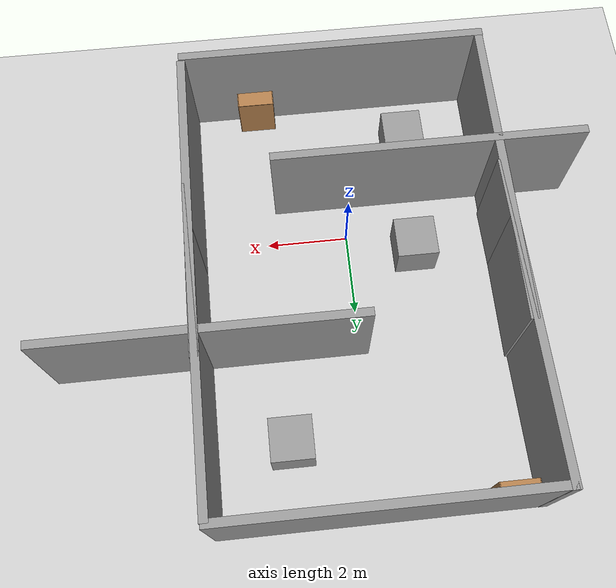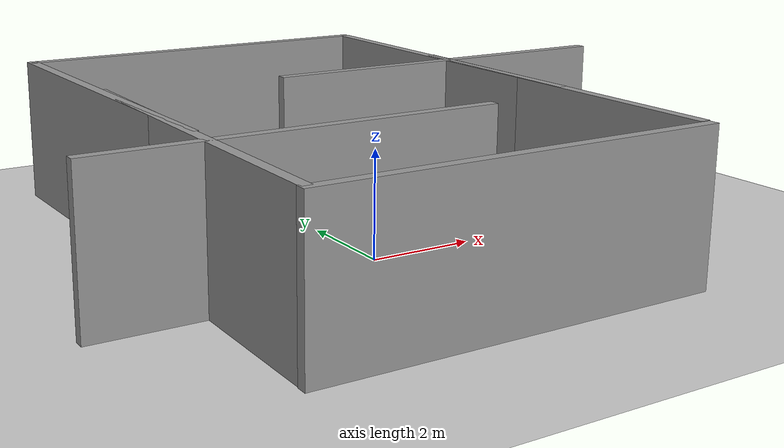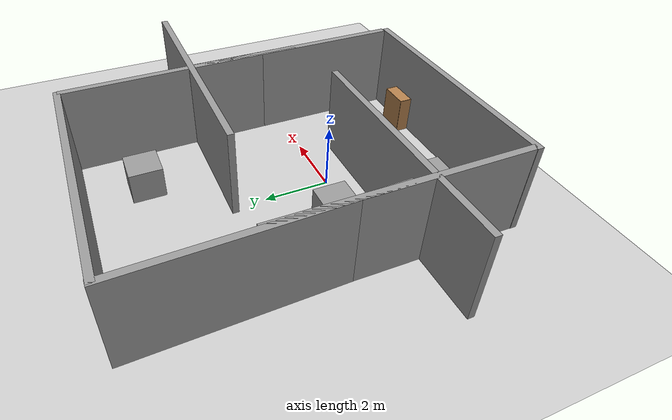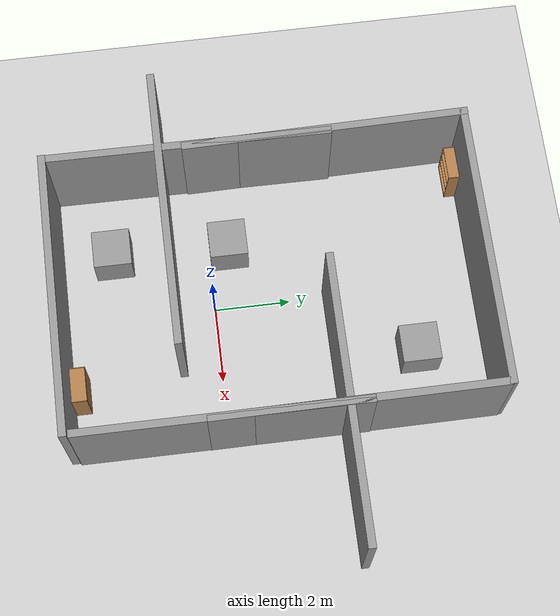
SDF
<sdf version="1.4">
 <world name="default">
  <light name="sun" type="directional">
   <pose>0 0 10 0 -0 0</pose>
   <diffuse>0.8 0.8 0.8 1</diffuse>
   <specular>0.2 0.2 0.2 1</specular>
   <attenuation>
    <range>1000</range>
    <constant>0.9</constant>
    <linear>0.01</linear>
    <quadratic>0.001</quadratic>
   </attenuation>
   <direction>-0.5 0.1 -0.9</direction>
  </light>
  <model name="ground_plane">
   <static>1</static>
   <link name="link">
    <collision name="collision">
     <geometry><plane><normal>0 0 1</normal><size>100 100</size></plane></geometry>
     <surface><friction><ode><mu>100</mu><mu2>50</mu2></ode></friction></surface>
    </collision>
    <visual name="visual">
     <cast_shadows>0</cast_shadows>
     <geometry><plane><normal>0 0 1</normal><size>100 100</size></plane></geometry>
     <material>
      <script><uri>file://media/materials/scripts/gazebo.material</uri><name>Gazebo/Grey</name></script>
     </material>
    </visual>
    <velocity_decay><linear>0</linear><angular>0</angular></velocity_decay>
   </link>
  </model>
  <physics type="ode">
   <max_step_size>0.01</max_step_size>
   <real_time_factor>1</real_time_factor>
   <real_time_update_rate>100</real_time_update_rate>
   <gravity>0 0 -9.8</gravity>
  </physics>
  <scene><ambient>0.4 0.4 0.4 1</ambient><background>0.7 0.7 0.7 1</background><shadows>1</shadows></scene>
  <spherical_coordinates>
   <surface_model>EARTH_WGS84</surface_model>
   <latitude_deg>0</latitude_deg>
   <longitude_deg>0</longitude_deg>
   <elevation>0</elevation>
   <heading_deg>0</heading_deg>
  </spherical_coordinates>
  <model name="grey_wall">
   <static>1</static>
   <link name="link">
    <pose>0 0 1.4 0 -0 0</pose>
    <collision name="collision"><geometry><box><size>7.5 0.2 2.8</size></box></geometry></collision>
    <visual name="visual">
     <cast_shadows>0</cast_shadows>
     <geometry><box><size>7.5 0.2 2.8</size></box></geometry>
     <material>
      <script>
       <uri>model://grey_wall/materials/scripts</uri>
       <uri>model://grey_wall/materials/textures</uri>
       <name>vrc/grey_wall</name>
      </script>
     </material>
    </visual>
    <velocity_decay><linear>0</linear><angular>0</angular></velocity_decay>
   </link>
   <pose>0 -4 0 0 -0 0</pose>
  </model>
  <model name="grey_wall_0">
   <static>1</static>
   <link name="link">
    <pose>0 0 1.4 0 -0 0</pose>
    <collision name="collision"><geometry><box><size>7.5 0.2 2.8</size></box></geometry></collision>
    <visual name="visual">
     <cast_shadows>0</cast_shadows>
     <geometry><box><size>7.5 0.2 2.8</size></box></geometry>
     <material>
      <script>
       <uri>model://grey_wall/materials/scripts</uri>
       <uri>model://grey_wall/materials/textures</uri>
       <name>vrc/grey_wall</name>
      </script>
     </material>
    </visual>
    <velocity_decay><linear>0</linear><angular>0</angular></velocity_decay>
   </link>
   <pose>0 7 0 0 -0 0</pose>
  </model>
  <model name="grey_wall_1">
   <static>1</static>
   <link name="link">
    <pose>0 0 1.4 0 -0 0</pose>
    <collision name="collision"><geometry><box><size>7.5 0.2 2.8</size></box></geometry></collision>
    <visual name="visual">
     <cast_shadows>0</cast_shadows>
     <geometry><box><size>7.5 0.2 2.8</size></box></geometry>
     <material>
      <script>
       <uri>model://grey_wall/materials/scripts</uri>
       <uri>model://grey_wall/materials/textures</uri>
       <name>vrc/grey_wall</name>
      </script>
     </material>
    </visual>
    <velocity_decay><linear>0</linear><angular>0</angular></velocity_decay>
   </link>
   <pose>-3.60996 -0.233129 -0 0 0 -1.57821</pose>
  </model>
  <model name="grey_wall_2">
   <static>1</static>
   <link name="link">
    <pose>0 0 1.4 0 -0 0</pose>
    <collision name="collision"><geometry><box><size>7.5 0.2 2.8</size></box></geometry></collision>
    <visual name="visual">
     <cast_shadows>0</cast_shadows>
     <geometry><box><size>7.5 0.2 2.8</size></box></geometry>
     <material>
      <script>
       <uri>model://grey_wall/materials/scripts</uri>
       <uri>model://grey_wall/materials/textures</uri>
       <name>vrc/grey_wall</name>
      </script>
     </material>
    </visual>
    <velocity_decay><linear>0</linear><angular>0</angular></velocity_decay>
   </link>
   <pose>3.70008 -0.1249 0 0 -0 1.56895</pose>
  </model>
  <model name="grey_wall_3">
   <static>1</static>
   <link name="link">
    <pose>0 0 1.4 0 -0 0</pose>
    <collision name="collision"><geometry><box><size>7.5 0.2 2.8</size></box></geometry></collision>
    <visual name="visual">
     <cast_shadows>0</cast_shadows>
     <geometry><box><size>7.5 0.2 2.8</size></box></geometry>
     <material>
      <script>
       <uri>model://grey_wall/materials/scripts</uri>
       <uri>model://grey_wall/materials/textures</uri>
       <name>vrc/grey_wall</name>
      </script>
     </material>
    </visual>
    <velocity_decay><linear>0</linear><angular>0</angular></velocity_decay>
   </link>
   <pose>-3.63786 3.35593 0 0 0 -1.55437</pose>
  </model>
  <model name="grey_wall_4">
   <static>1</static>
   <link name="link">
    <pose>0 0 1.4 0 -0 0</pose>
    <collision name="collision"><geometry><box><size>7.5 0.2 2.8</size></box></geometry></collision>
    <visual name="visual">
     <cast_shadows>0</cast_shadows>
     <geometry><box><size>7.5 0.2 2.8</size></box></geometry>
     <material>
      <script>
       <uri>model://grey_wall/materials/scripts</uri>
       <uri>model://grey_wall/materials/textures</uri>
       <name>vrc/grey_wall</name>
      </script>
     </material>
    </visual>
    <velocity_decay><linear>0</linear><angular>0</angular></velocity_decay>
   </link>
   <pose>3.68871 3.2435 0 0 0 -1.56586</pose>
  </model>
  <model name="unit_box_1">
   <pose>-1.72672 -2.54489 0.5 0 -0 0</pose>
   <link name="link">
    <inertial>
     <mass>1</mass>
     <inertia><ixx>1</ixx><ixy>0</ixy><ixz>0</ixz><iyy>1</iyy><iyz>0</iyz><izz>1</izz></inertia>
    </inertial>
    <collision name="collision"><geometry><box><size>1 1 1</size></box></geometry></collision>
    <visual name="visual">
     <geometry><box><size>1 1 1</size></box></geometry>
     <material>
      <script><uri>file://media/materials/scripts/gazebo.material</uri><name>Gazebo/Grey</name></script>
     </material>
    </visual>
    <velocity_decay><linear>0</linear><angular>0</angular></velocity_decay>
   </link>
   <static>0</static>
  </model>
  <model name="unit_box_2">
   <pose>-1.63777 0.534646 0.5 0 -0 0</pose>
   <link name="link">
    <inertial>
     <mass>1</mass>
     <inertia><ixx>1</ixx><ixy>0</ixy><ixz>0</ixz><iyy>1</iyy><iyz>0</iyz><izz>1</izz></inertia>
    </inertial>
    <collision name="collision"><geometry><box><size>1 1 1</size></box></geometry></collision>
    <visual name="visual">
     <geometry><box><size>1 1 1</size></box></geometry>
     <material>
      <script><uri>file://media/materials/scripts/gazebo.material</uri><name>Gazebo/Grey</name></script>
     </material>
    </visual>
    <velocity_decay><linear>0</linear><angular>0</angular></velocity_decay>
   </link>
   <static>0</static>
  </model>
  <model name="unit_box_3">
   <pose>1.85025 5.16468 0.5 0 -0 0</pose>
   <link name="link">
    <inertial>
     <mass>1</mass>
     <inertia><ixx>1</ixx><ixy>0</ixy><ixz>0</ixz><iyy>1</iyy><iyz>0</iyz><izz>1</izz></inertia>
    </inertial>
    <collision name="collision"><geometry><box><size>1 1 1</size></box></geometry></collision>
    <visual name="visual">
     <geometry><box><size>1 1 1</size></box></geometry>
     <material>
      <script><uri>file://media/materials/scripts/gazebo.material</uri><name>Gazebo/Grey</name></script>
     </material>
    </visual>
    <velocity_decay><linear>0</linear><angular>0</angular></velocity_decay>
   </link>
   <static>0</static>
  </model>
  <model name="bookshelf">
   <static>1</static>
   <link name="link">
    <inertial><mass>1</mass></inertial>
    <collision name="back">
     <pose>0 0.005 0.6 0 -0 0</pose>
     <geometry><box><size>0.9 0.01 1.2</size></box></geometry>
    </collision>
    <visual name="visual1">
     <pose>0 0.005 0.6 0 -0 0</pose>
     <geometry><box><size>0.9 0.01 1.2</size></box></geometry>
     <material>
      <script><uri>file://media/materials/scripts/gazebo.material</uri><name>Gazebo/Wood</name></script>
     </material>
    </visual>
    <collision name="left_side">
     <pose>0.45 -0.195 0.6 0 -0 0</pose>
     <geometry><box><size>0.02 0.4 1.2</size></box></geometry>
    </collision>
    <visual name="visual2">
     <pose>0.45 -0.195 0.6 0 -0 0</pose>
     <geometry><box><size>0.02 0.4 1.2</size></box></geometry>
     <material>
      <script><uri>file://media/materials/scripts/gazebo.material</uri><name>Gazebo/Wood</name></script>
     </material>
    </visual>
    <collision name="right_side">
     <pose>-0.45 -0.195 0.6 0 -0 0</pose>
     <geometry><box><size>0.02 0.4 1.2</size></box></geometry>
    </collision>
    <visual name="visual3">
     <pose>-0.45 -0.195 0.6 0 -0 0</pose>
     <geometry><box><size>0.02 0.4 1.2</size></box></geometry>
     <material>
      <script><uri>file://media/materials/scripts/gazebo.material</uri><name>Gazebo/Wood</name></script>
     </material>
    </visual>
    <collision name="bottom">
     <pose>0 -0.195 0.03 0 -0 0</pose>
     <geometry><box><size>0.88 0.4 0.06</size></box></geometry>
    </collision>
    <visual name="visual4">
     <pose>0 -0.195 0.03 0 -0 0</pose>
     <geometry><box><size>0.88 0.4 0.06</size></box></geometry>
     <material>
      <script><uri>file://media/materials/scripts/gazebo.material</uri><name>Gazebo/Wood</name></script>
     </material>
    </visual>
    <collision name="top">
     <pose>0 -0.195 1.19 0 -0 0</pose>
     <geometry><box><size>0.88 0.4 0.02</size></box></geometry>
    </collision>
    <visual name="visual5">
     <pose>0 -0.195 1.19 0 -0 0</pose>
     <geometry><box><size>0.88 0.4 0.02</size></box></geometry>
     <material>
      <script><uri>file://media/materials/scripts/gazebo.material</uri><name>Gazebo/Wood</name></script>
     </material>
    </visual>
    <collision name="low_shelf">
     <pose>0 -0.195 0.43 0 -0 0</pose>
     <geometry><box><size>0.88 0.4 0.02</size></box></geometry>
    </collision>
    <visual name="visual6">
     <pose>0 -0.195 0.43 0 -0 0</pose>
     <geometry><box><size>0.88 0.4 0.02</size></box></geometry>
     <material>
      <script><uri>file://media/materials/scripts/gazebo.material</uri><name>Gazebo/Wood</name></script>
     </material>
    </visual>
    <collision name="high_shelf">
     <pose>0 -0.195 0.8 0 -0 0</pose>
     <geometry><box><size>0.88 0.4 0.02</size></box></geometry>
    </collision>
    <visual name="visual7">
     <pose>0 -0.195 0.8 0 -0 0</pose>
     <geometry><box><size>0.88 0.4 0.02</size></box></geometry>
     <material>
      <script><uri>file://media/materials/scripts/gazebo.material</uri><name>Gazebo/Wood</name></script>
     </material>
    </visual>
    <velocity_decay><linear>0</linear><angular>0</angular></velocity_decay>
   </link>
   <pose>2 -3.49476 0 0 -0 0</pose>
  </model>
  <model name="bookshelf_0">
   <static>1</static>
   <link name="link">
    <inertial><mass>1</mass></inertial>
    <collision name="back">
     <pose>0 0.005 0.6 0 -0 0</pose>
     <geometry><box><size>0.9 0.01 1.2</size></box></geometry>
    </collision>
    <visual name="visual1">
     <pose>0 0.005 0.6 0 -0 0</pose>
     <geometry><box><size>0.9 0.01 1.2</size></box></geometry>
     <material>
      <script><uri>file://media/materials/scripts/gazebo.material</uri><name>Gazebo/Wood</name></script>
     </material>
    </visual>
    <collision name="left_side">
     <pose>0.45 -0.195 0.6 0 -0 0</pose>
     <geometry><box><size>0.02 0.4 1.2</size></box></geometry>
    </collision>
    <visual name="visual2">
     <pose>0.45 -0.195 0.6 0 -0 0</pose>
     <geometry><box><size>0.02 0.4 1.2</size></box></geometry>
     <material>
      <script><uri>file://media/materials/scripts/gazebo.material</uri><name>Gazebo/Wood</name></script>
     </material>
    </visual>
    <collision name="right_side">
     <pose>-0.45 -0.195 0.6 0 -0 0</pose>
     <geometry><box><size>0.02 0.4 1.2</size></box></geometry>
    </collision>
    <visual name="visual3">
     <pose>-0.45 -0.195 0.6 0 -0 0</pose>
     <geometry><box><size>0.02 0.4 1.2</size></box></geometry>
     <material>
      <script><uri>file://media/materials/scripts/gazebo.material</uri><name>Gazebo/Wood</name></script>
     </material>
    </visual>
    <collision name="bottom">
     <pose>0 -0.195 0.03 0 -0 0</pose>
     <geometry><box><size>0.88 0.4 0.06</size></box></geometry>
    </collision>
    <visual name="visual4">
     <pose>0 -0.195 0.03 0 -0 0</pose>
     <geometry><box><size>0.88 0.4 0.06</size></box></geometry>
     <material>
      <script><uri>file://media/materials/scripts/gazebo.material</uri><name>Gazebo/Wood</name></script>
     </material>
    </visual>
    <collision name="top">
     <pose>0 -0.195 1.19 0 -0 0</pose>
     <geometry><box><size>0.88 0.4 0.02</size></box></geometry>
    </collision>
    <visual name="visual5">
     <pose>0 -0.195 1.19 0 -0 0</pose>
     <geometry><box><size>0.88 0.4 0.02</size></box></geometry>
     <material>
      <script><uri>file://media/materials/scripts/gazebo.material</uri><name>Gazebo/Wood</name></script>
     </material>
    </visual>
    <collision name="low_shelf">
     <pose>0 -0.195 0.43 0 -0 0</pose>
     <geometry><box><size>0.88 0.4 0.02</size></box></geometry>
    </collision>
    <visual name="visual6">
     <pose>0 -0.195 0.43 0 -0 0</pose>
     <geometry><box><size>0.88 0.4 0.02</size></box></geometry>
     <material>
      <script><uri>file://media/materials/scripts/gazebo.material</uri><name>Gazebo/Wood</name></script>
     </material>
    </visual>
    <collision name="high_shelf">
     <pose>0 -0.195 0.8 0 -0 0</pose>
     <geometry><box><size>0.88 0.4 0.02</size></box></geometry>
    </collision>
    <visual name="visual7">
     <pose>0 -0.195 0.8 0 -0 0</pose>
     <geometry><box><size>0.88 0.4 0.02</size></box></geometry>
     <material>
      <script><uri>file://media/materials/scripts/gazebo.material</uri><name>Gazebo/Wood</name></script>
     </material>
    </visual>
    <velocity_decay><linear>0</linear><angular>0</angular></velocity_decay>
   </link>
   <pose>-3 7 0 0 -0 0</pose>
  </model>
  <model name="grey_wall_5">
   <static>1</static>
   <link name="link">
    <pose>0 0 1.4 0 -0 0</pose>
    <collision name="collision"><geometry><box><size>7.5 0.2 2.8</size></box></geometry></collision>
    <visual name="visual">
     <cast_shadows>0</cast_shadows>
     <geometry><box><size>7.5 0.2 2.8</size></box></geometry>
     <material>
      <script>
       <uri>model://grey_wall/materials/scripts</uri>
       <uri>model://grey_wall/materials/textures</uri>
       <name>vrc/grey_wall</name>
      </script>
     </material>
    </visual>
    <velocity_decay><linear>0</linear><angular>0</angular></velocity_decay>
   </link>
   <pose>-2 -1 0 0 -0 0</pose>
  </model>
  <model name="grey_wall_6">
   <static>1</static>
   <link name="link">
    <pose>0 0 1.4 0 -0 0</pose>
    <collision name="collision"><geometry><box><size>7.5 0.2 2.8</size></box></geometry></collision>
    <visual name="visual">
     <cast_shadows>0</cast_shadows>
     <geometry><box><size>7.5 0.2 2.8</size></box></geometry>
     <material>
      <script>
       <uri>model://grey_wall/materials/scripts</uri>
       <uri>model://grey_wall/materials/textures</uri>
       <name>vrc/grey_wall</name>
      </script>
     </material>
    </visual>
    <velocity_decay><linear>0</linear><angular>0</angular></velocity_decay>
   </link>
   <pose>3.56166 3 0 0 -0 0</pose>
  </model>
 </world>
</sdf>
